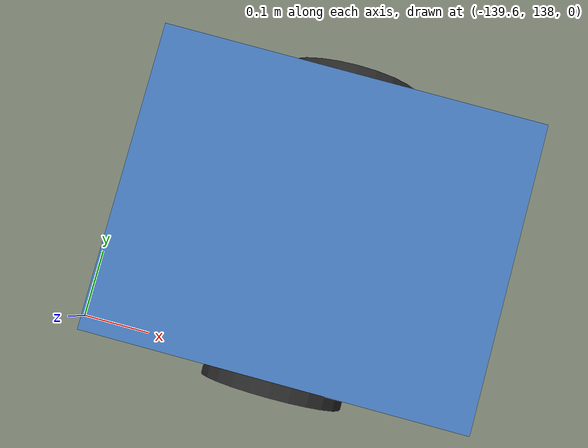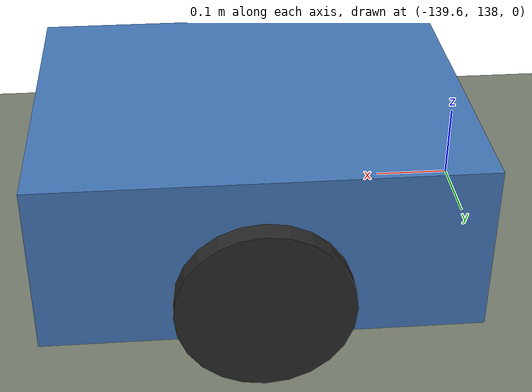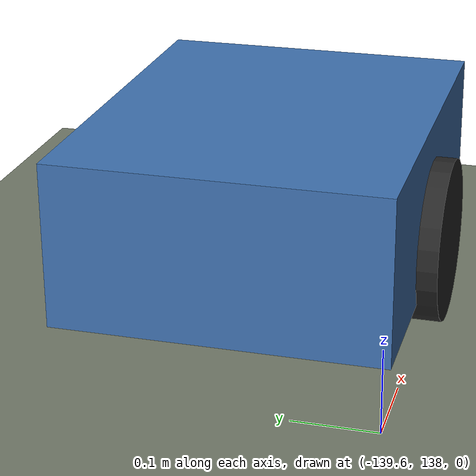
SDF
<?xml version="1.0" ?>
<sdf version="1.8">
  <world name="chicago_west_loop">

    <physics name="1ms" type="ignored">
      <max_step_size>0.001</max_step_size>
      <real_time_factor>1.0</real_time_factor>
    </physics>

    <plugin filename="ignition-gazebo-physics-system"
            name="ignition::gazebo::systems::Physics"/>
    <plugin filename="ignition-gazebo-scene-broadcaster-system"
            name="ignition::gazebo::systems::SceneBroadcaster"/>
    <plugin filename="ignition-gazebo-user-commands-system"
            name="ignition::gazebo::systems::UserCommands"/>
    <!-- gpu_lidar produces nothing at all without this plugin. -->
    <plugin filename="ignition-gazebo-sensors-system"
            name="ignition::gazebo::systems::Sensors">
      <render_engine>ogre2</render_engine>
    </plugin>

    <!-- Documentary: lets a reader check the georeferencing claim against
         the OSM source. Nothing in the stack depends on it. -->
    <spherical_coordinates>
      <surface_model>EARTH_WGS84</surface_model>
      <world_frame_orientation>ENU</world_frame_orientation>
      <latitude_deg>41.879</latitude_deg>
      <longitude_deg>-87.666</longitude_deg>
      <elevation>182.0</elevation>
      <heading_deg>0</heading_deg>
    </spherical_coordinates>

    <scene>
      <ambient>0.35 0.35 0.38 1</ambient>
      <background>0.62 0.72 0.85 1</background>
      <shadows>false</shadows>
    </scene>

    <light type="directional" name="sun">
      <cast_shadows>false</cast_shadows>
      <pose>0 0 50 0 0 0</pose>
      <diffuse>0.95 0.93 0.88 1</diffuse>
      <specular>0.15 0.15 0.15 1</specular>
      <direction>-0.6 0.45 -0.65</direction>
    </light>

    <!-- A dim fill from the opposite side so shaded walls stay legible
         rather than going to flat black. Cheap: no shadows, no extra
         geometry pass. -->
    <light type="directional" name="fill">
      <cast_shadows>false</cast_shadows>
      <pose>0 0 50 0 0 0</pose>
      <diffuse>0.25 0.27 0.32 1</diffuse>
      <specular>0 0 0 1</specular>
      <direction>0.6 -0.45 -0.5</direction>
    </light>

    <model name="ground_plane">
      <static>true</static>
      <link name="link">
        <collision name="collision">
          <geometry><plane><normal>0 0 1</normal>
            <size>800 800</size></plane></geometry>
        </collision>
        <visual name="visual">
          <geometry><plane><normal>0 0 1</normal>
            <size>800 800</size></plane></geometry>
          <material>
            <ambient>0.35 0.37 0.33 1</ambient>
            <diffuse>0.45 0.48 0.42 1</diffuse>
          </material>
        </visual>
      </link>
    </model>

    <include>
      <uri>model://site_buildings</uri>
    </include>

    <include>
      <uri>model://roboto_bot</uri>
      <name>roboto_bot</name>
      <pose>-139.3 138.2 0 0 0 0.000000</pose>
    </include>

  </world>
</sdf>

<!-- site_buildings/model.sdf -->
<sdf version="1.8">
  <model name="site_buildings">
    <static>true</static>
    <link name="link">
      <visual name="visual">
        <geometry><mesh><uri>meshes/buildings.obj</uri></mesh></geometry>
        <material>
          <ambient>0.62 0.60 0.56 1</ambient>
          <diffuse>0.72 0.70 0.66 1</diffuse>
          <specular>0.10 0.10 0.10 1</specular>
        </material>
      </visual>
      <collision name="c0">
        <pose>-95.993 -40.161 4.500 0 0 1.595780</pose>
        <geometry><box><size>35.433 41.251 9.000</size></box></geometry>
      </collision>
      <collision name="c1">
        <pose>154.458 191.765 3.923 0 0 0.017434</pose>
        <geometry><box><size>24.241 7.778 7.846</size></box></geometry>
      </collision>
      <collision name="c2">
        <pose>-116.423 81.113 9.000 0 0 0.016001</pose>
        <geometry><box><size>77.079 75.287 18.000</size></box></geometry>
      </collision>
      <collision name="c3">
        <pose>-23.208 114.087 9.000 0 0 1.590538</pose>
        <geometry><box><size>13.031 41.702 18.000</size></box></geometry>
      </collision>
      <collision name="c4">
        <pose>-22.935 100.602 4.987 0 0 1.591002</pose>
        <geometry><box><size>13.964 41.711 9.973</size></box></geometry>
      </collision>
      <collision name="c5">
        <pose>-90.187 21.554 5.221 0 0 1.583752</pose>
        <geometry><box><size>44.804 26.133 10.442</size></box></geometry>
      </collision>
      <collision name="c6">
        <pose>-105.908 210.686 1.500 0 0 -1.568632</pose>
        <geometry><box><size>25.302 35.667 3.000</size></box></geometry>
      </collision>
      <collision name="c7">
        <pose>155.203 18.773 5.742 0 0 1.589687</pose>
        <geometry><box><size>26.396 14.155 11.484</size></box></geometry>
      </collision>
      <collision name="c8">
        <pose>147.671 161.773 2.568 0 0 -3.130570</pose>
        <geometry><box><size>8.077 21.232 5.137</size></box></geometry>
      </collision>
      <collision name="c9">
        <pose>125.978 -123.258 3.075 0 0 1.591822</pose>
        <geometry><box><size>20.153 4.914 6.150</size></box></geometry>
      </collision>
      <collision name="c10">
        <pose>87.730 172.146 12.000 0 0 1.589832</pose>
        <geometry><box><size>56.712 70.237 24.000</size></box></geometry>
      </collision>
      <collision name="c11">
        <pose>119.354 -176.249 3.277 0 0 1.603447</pose>
        <geometry><box><size>22.767 9.030 6.554</size></box></geometry>
      </collision>
      <collision name="c12">
        <pose>120.857 -123.393 3.863 0 0 -1.549771</pose>
        <geometry><box><size>20.230 5.332 7.726</size></box></geometry>
      </collision>
      <collision name="c13">
        <pose>115.735 -123.604 3.364 0 0 1.589948</pose>
        <geometry><box><size>20.051 5.115 6.728</size></box></geometry>
      </collision>
      <collision name="c14">
        <pose>110.911 -174.716 5.281 0 0 1.590709</pose>
        <geometry><box><size>18.985 7.884 10.563</size></box></geometry>
      </collision>
      <collision name="c15">
        <pose>109.064 -121.258 4.272 0 0 -1.557830</pose>
        <geometry><box><size>24.567 6.708 8.544</size></box></geometry>
      </collision>
      <collision name="c16">
        <pose>101.253 -123.624 2.846 0 0 -1.551900</pose>
        <geometry><box><size>20.879 7.018 5.692</size></box></geometry>
      </collision>
      <collision name="c17">
        <pose>108.113 -36.397 4.358 0 0 0.015634</pose>
        <geometry><box><size>8.586 25.189 8.717</size></box></geometry>
      </collision>
      <collision name="c18">
        <pose>103.163 -172.330 2.442 0 0 -1.553798</pose>
        <geometry><box><size>15.861 7.474 4.884</size></box></geometry>
      </collision>
      <collision name="c19">
        <pose>94.596 -123.822 2.432 0 0 -1.562161</pose>
        <geometry><box><size>18.339 6.553 4.864</size></box></geometry>
      </collision>
      <collision name="c20">
        <pose>96.841 -34.992 4.500 0 0 -1.567279</pose>
        <geometry><box><size>23.692 6.400 9.000</size></box></geometry>
      </collision>
      <collision name="c21">
        <pose>95.884 -171.303 5.150 0 0 -3.126317</pose>
        <geometry><box><size>6.550 14.787 10.299</size></box></geometry>
      </collision>
      <collision name="c22">
        <pose>86.961 -123.375 4.269 0 0 -3.109525</pose>
        <geometry><box><size>7.624 20.140 8.538</size></box></geometry>
      </collision>
      <collision name="c23">
        <pose>86.120 -33.631 3.227 0 0 1.592123</pose>
        <geometry><box><size>21.031 8.933 6.453</size></box></geometry>
      </collision>
      <collision name="c24">
        <pose>88.109 -179.579 4.500 0 0 -1.554775</pose>
        <geometry><box><size>31.135 7.816 9.000</size></box></geometry>
      </collision>
      <collision name="c25">
        <pose>79.577 -89.446 4.682 0 0 -1.536759</pose>
        <geometry><box><size>10.980 5.280 9.363</size></box></geometry>
      </collision>
      <collision name="c26">
        <pose>80.505 -120.393 4.297 0 0 1.596537</pose>
        <geometry><box><size>24.538 5.537 8.594</size></box></geometry>
      </collision>
      <collision name="c27">
        <pose>80.429 -171.025 3.837 0 0 1.575457</pose>
        <geometry><box><size>14.257 6.559 7.673</size></box></geometry>
      </collision>
      <collision name="c28">
        <pose>74.625 -89.594 4.500 0 0 1.605286</pose>
        <geometry><box><size>10.886 4.942 9.000</size></box></geometry>
      </collision>
      <collision name="c29">
        <pose>74.209 -122.140 4.110 0 0 -1.547193</pose>
        <geometry><box><size>21.576 7.188 8.221</size></box></geometry>
      </collision>
      <collision name="c30">
        <pose>77.928 -36.520 5.066 0 0 1.583336</pose>
        <geometry><box><size>22.643 5.727 10.132</size></box></geometry>
      </collision>
      <collision name="c31">
        <pose>71.159 -35.065 5.000 0 0 1.568438</pose>
        <geometry><box><size>17.609 6.491 10.000</size></box></geometry>
      </collision>
      <collision name="c32">
        <pose>73.173 -177.534 4.500 0 0 1.582913</pose>
        <geometry><box><size>25.213 7.387 9.000</size></box></geometry>
      </collision>
      <collision name="c33">
        <pose>65.628 -124.385 5.662 0 0 1.593675</pose>
        <geometry><box><size>21.239 9.861 11.325</size></box></geometry>
      </collision>
      <collision name="c34">
        <pose>64.296 -86.552 3.610 0 0 0.021226</pose>
        <geometry><box><size>9.424 7.189 7.220</size></box></geometry>
      </collision>
      <collision name="c35">
        <pose>64.012 -35.143 4.143 0 0 1.571750</pose>
        <geometry><box><size>17.608 7.861 8.286</size></box></geometry>
      </collision>
      <collision name="c36">
        <pose>66.404 -174.338 2.673 0 0 -3.121909</pose>
        <geometry><box><size>5.646 15.572 5.346</size></box></geometry>
      </collision>
      <collision name="c37">
        <pose>56.314 -88.367 4.908 0 0 1.592108</pose>
        <geometry><box><size>10.521 6.868 9.817</size></box></geometry>
      </collision>
      <collision name="c38">
        <pose>60.614 -174.448 4.431 0 0 1.584653</pose>
        <geometry><box><size>15.599 6.160 8.861</size></box></geometry>
      </collision>
      <collision name="c39">
        <pose>48.709 -121.663 4.329 0 0 1.581750</pose>
        <geometry><box><size>24.820 8.356 8.658</size></box></geometry>
      </collision>
      <collision name="c40">
        <pose>48.201 159.013 4.500 0 0 -1.543943</pose>
        <geometry><box><size>23.592 5.799 9.000</size></box></geometry>
      </collision>
      <collision name="c41">
        <pose>56.180 -35.215 2.890 0 0 -1.569842</pose>
        <geometry><box><size>17.642 7.803 5.781</size></box></geometry>
      </collision>
      <collision name="c42">
        <pose>42.247 -123.761 3.136 0 0 1.595522</pose>
        <geometry><box><size>20.828 4.642 6.272</size></box></geometry>
      </collision>
      <collision name="c43">
        <pose>36.415 173.712 2.971 0 0 -1.541293</pose>
        <geometry><box><size>52.729 15.079 5.942</size></box></geometry>
      </collision>
      <collision name="c44">
        <pose>53.122 -177.850 4.279 0 0 1.580973</pose>
        <geometry><box><size>22.200 8.965 8.557</size></box></geometry>
      </collision>
      <collision name="c45">
        <pose>37.491 -123.877 4.191 0 0 -1.546070</pose>
        <geometry><box><size>20.830 4.874 8.381</size></box></geometry>
      </collision>
      <collision name="c46">
        <pose>42.895 19.914 7.500 0 0 -1.551113</pose>
        <geometry><box><size>37.971 29.446 15.000</size></box></geometry>
      </collision>
      <collision name="c47">
        <pose>42.497 -35.450 4.500 0 0 -1.422884</pose>
        <geometry><box><size>23.935 12.539 9.000</size></box></geometry>
      </collision>
      <collision name="c48">
        <pose>43.775 -176.113 4.500 0 0 1.588043</pose>
        <geometry><box><size>18.296 9.821 9.000</size></box></geometry>
      </collision>
      <collision name="c49">
        <pose>32.505 -123.993 5.376 0 0 0.021688</pose>
        <geometry><box><size>5.215 20.831 10.751</size></box></geometry>
      </collision>
      <collision name="c50">
        <pose>25.515 158.394 3.472 0 0 1.604364</pose>
        <geometry><box><size>18.496 6.508 6.945</size></box></geometry>
      </collision>
      <collision name="c51">
        <pose>34.892 -173.248 4.513 0 0 1.594256</pose>
        <geometry><box><size>15.521 7.299 9.026</size></box></geometry>
      </collision>
      <collision name="c52">
        <pose>22.852 48.787 3.330 0 0 -1.552376</pose>
        <geometry><box><size>18.030 7.372 6.660</size></box></geometry>
      </collision>
      <collision name="c53">
        <pose>26.064 -125.932 4.500 0 0 -1.549033</pose>
        <geometry><box><size>17.253 7.746 9.000</size></box></geometry>
      </collision>
      <collision name="c54">
        <pose>28.178 -173.121 3.724 0 0 1.593001</pose>
        <geometry><box><size>13.144 5.030 7.447</size></box></geometry>
      </collision>
      <collision name="c55">
        <pose>19.153 157.278 4.500 0 0 -1.543805</pose>
        <geometry><box><size>18.926 5.480 9.000</size></box></geometry>
      </collision>
      <collision name="c56">
        <pose>25.002 -35.589 4.500 0 0 1.595000</pose>
        <geometry><box><size>20.864 6.774 9.000</size></box></geometry>
      </collision>
      <collision name="c57">
        <pose>23.384 -178.235 4.145 0 0 1.595765</pose>
        <geometry><box><size>23.280 5.032 8.291</size></box></geometry>
      </collision>
      <collision name="c58">
        <pose>15.369 29.136 4.500 0 0 -1.555476</pose>
        <geometry><box><size>57.994 8.019 9.000</size></box></geometry>
      </collision>
      <collision name="c59">
        <pose>13.264 157.273 4.500 0 0 -1.542528</pose>
        <geometry><box><size>18.726 6.309 9.000</size></box></geometry>
      </collision>
      <collision name="c60">
        <pose>16.402 -33.200 4.500 0 0 -1.543567</pose>
        <geometry><box><size>16.860 7.550 9.000</size></box></geometry>
      </collision>
      <collision name="c61">
        <pose>18.488 -177.840 4.658 0 0 0.012144</pose>
        <geometry><box><size>4.824 22.304 9.317</size></box></geometry>
      </collision>
      <collision name="c62">
        <pose>7.591 41.439 4.557 0 0 1.587365</pose>
        <geometry><box><size>29.560 7.189 9.115</size></box></geometry>
      </collision>
      <collision name="c63">
        <pose>14.162 -126.733 3.739 0 0 0.026267</pose>
        <geometry><box><size>6.344 15.257 7.479</size></box></geometry>
      </collision>
      <collision name="c64">
        <pose>11.966 -87.824 3.168 0 0 0.018539</pose>
        <geometry><box><size>17.407 7.009 6.337</size></box></geometry>
      </collision>
      <collision name="c65">
        <pose>7.283 156.348 4.500 0 0 1.594942</pose>
        <geometry><box><size>20.249 5.846 9.000</size></box></geometry>
      </collision>
      <collision name="c66">
        <pose>12.073 -171.387 2.881 0 0 -3.127013</pose>
        <geometry><box><size>7.179 16.975 5.763</size></box></geometry>
      </collision>
      <collision name="c67">
        <pose>8.082 -126.880 5.190 0 0 -3.119417</pose>
        <geometry><box><size>6.011 15.257 10.381</size></box></geometry>
      </collision>
      <collision name="c68">
        <pose>1.785 -127.043 5.677 0 0 -1.550614</pose>
        <geometry><box><size>15.242 6.618 11.355</size></box></geometry>
      </collision>
      <collision name="c69">
        <pose>0.585 -173.764 3.180 0 0 0.018129</pose>
        <geometry><box><size>6.127 15.095 6.360</size></box></geometry>
      </collision>
      <collision name="c70">
        <pose>-4.860 -127.210 3.974 0 0 1.590976</pose>
        <geometry><box><size>15.239 6.742 7.948</size></box></geometry>
      </collision>
      <collision name="c71">
        <pose>-6.030 -173.898 2.537 0 0 0.014182</pose>
        <geometry><box><size>7.165 15.151 5.073</size></box></geometry>
      </collision>
      <collision name="c72">
        <pose>-11.767 -127.382 3.776 0 0 -1.550616</pose>
        <geometry><box><size>15.266 7.075 7.551</size></box></geometry>
      </collision>
      <collision name="c73">
        <pose>-13.128 -174.010 5.633 0 0 0.016993</pose>
        <geometry><box><size>7.190 15.155 11.265</size></box></geometry>
      </collision>
      <collision name="c74">
        <pose>-18.640 -127.543 4.094 0 0 1.584955</pose>
        <geometry><box><size>15.299 6.833 8.189</size></box></geometry>
      </collision>
      <collision name="c75">
        <pose>-20.116 -174.120 2.752 0 0 -3.122663</pose>
        <geometry><box><size>7.040 15.186 5.503</size></box></geometry>
      </collision>
      <collision name="c76">
        <pose>-25.515 -127.705 5.422 0 0 0.022083</pose>
        <geometry><box><size>7.041 15.256 10.845</size></box></geometry>
      </collision>
      <collision name="c77">
        <pose>-27.107 -174.237 4.229 0 0 1.588805</pose>
        <geometry><box><size>15.211 6.957 8.458</size></box></geometry>
      </collision>
      <collision name="c78">
        <pose>-33.557 -174.340 5.099 0 0 -1.552787</pose>
        <geometry><box><size>15.240 5.945 10.198</size></box></geometry>
      </collision>
      <collision name="c79">
        <pose>-31.948 -127.847 4.966 0 0 -3.119635</pose>
        <geometry><box><size>6.069 15.256 9.933</size></box></geometry>
      </collision>
      <collision name="c80">
        <pose>-107.202 -133.079 3.332 0 0 -1.547062</pose>
        <geometry><box><size>14.345 5.679 6.664</size></box></geometry>
      </collision>
      <collision name="c81">
        <pose>-148.426 -116.511 6.000 0 0 -1.547400</pose>
        <geometry><box><size>55.666 15.282 12.000</size></box></geometry>
      </collision>
      <collision name="c82">
        <pose>-150.944 -190.137 10.500 0 0 -1.550809</pose>
        <geometry><box><size>32.784 51.300 21.000</size></box></geometry>
      </collision>
      <collision name="c83">
        <pose>-161.633 8.353 4.500 0 0 -1.547726</pose>
        <geometry><box><size>16.469 6.456 9.000</size></box></geometry>
      </collision>
      <collision name="c84">
        <pose>-170.317 8.091 5.151 0 0 1.604222</pose>
        <geometry><box><size>23.681 7.126 10.303</size></box></geometry>
      </collision>
      <collision name="c85">
        <pose>-178.158 11.498 3.240 0 0 1.594654</pose>
        <geometry><box><size>20.770 7.337 6.481</size></box></geometry>
      </collision>
      <collision name="c86">
        <pose>-190.547 202.001 30.000 0 0 1.597255</pose>
        <geometry><box><size>45.694 71.976 60.000</size></box></geometry>
      </collision>
      <collision name="c87">
        <pose>-208.517 18.875 5.373 0 0 -3.135129</pose>
        <geometry><box><size>51.316 44.253 10.745</size></box></geometry>
      </collision>
      <collision name="c88">
        <pose>-204.073 -194.819 5.050 0 0 0.017657</pose>
        <geometry><box><size>55.566 36.693 10.100</size></box></geometry>
      </collision>
      <collision name="c89">
        <pose>-213.781 -120.214 2.453 0 0 0.022256</pose>
        <geometry><box><size>83.742 50.717 4.906</size></box></geometry>
      </collision>
      <collision name="c90">
        <pose>-183.677 113.700 3.953 0 0 2.425040</pose>
        <geometry><box><size>29.715 31.592 7.907</size></box></geometry>
      </collision>
      <collision name="c91">
        <pose>-164.528 69.058 4.547 0 0 -3.137696</pose>
        <geometry><box><size>39.669 32.084 9.094</size></box></geometry>
      </collision>
      <collision name="c92">
        <pose>-199.691 95.543 6.000 0 0 -2.289324</pose>
        <geometry><box><size>14.489 30.363 12.000</size></box></geometry>
      </collision>
      <collision name="c93">
        <pose>117.152 -31.272 3.492 0 0 1.621568</pose>
        <geometry><box><size>19.227 10.208 6.984</size></box></geometry>
      </collision>
      <collision name="c94">
        <pose>-20.473 -65.952 4.519 0 0 0.022542</pose>
        <geometry><box><size>40.435 29.172 9.039</size></box></geometry>
      </collision>
      <collision name="c95">
        <pose>113.086 -58.733 4.599 0 0 0.034630</pose>
        <geometry><box><size>21.505 7.168 9.198</size></box></geometry>
      </collision>
      <collision name="c96">
        <pose>113.567 -71.746 3.059 0 0 -3.126624</pose>
        <geometry><box><size>20.057 6.241 6.118</size></box></geometry>
      </collision>
      <collision name="c97">
        <pose>112.457 -78.875 4.500 0 0 0.041123</pose>
        <geometry><box><size>24.865 5.700 9.000</size></box></geometry>
      </collision>
      <collision name="c98">
        <pose>114.473 -86.073 3.975 0 0 0.037535</pose>
        <geometry><box><size>20.143 6.658 7.949</size></box></geometry>
      </collision>
      <collision name="c99">
        <pose>113.201 -93.007 3.152 0 0 1.604112</pose>
        <geometry><box><size>7.479 23.193 6.304</size></box></geometry>
      </collision>
      <collision name="c100">
        <pose>120.698 -103.757 5.742 0 0 0.025680</pose>
        <geometry><box><size>13.419 6.713 11.484</size></box></geometry>
      </collision>
      <collision name="c101">
        <pose>-81.256 -118.466 1.500 0 0 1.600045</pose>
        <geometry><box><size>12.768 14.927 3.000</size></box></geometry>
      </collision>
      <collision name="c102">
        <pose>-87.372 -131.296 4.500 0 0 1.588242</pose>
        <geometry><box><size>12.044 27.711 9.000</size></box></geometry>
      </collision>
      <collision name="c103">
        <pose>-91.766 -140.210 4.500 0 0 -1.544333</pose>
        <geometry><box><size>5.803 13.066 9.000</size></box></geometry>
      </collision>
      <collision name="c104">
        <pose>122.356 -195.881 4.551 0 0 0.034094</pose>
        <geometry><box><size>14.483 8.820 9.102</size></box></geometry>
      </collision>
      <collision name="c105">
        <pose>-92.680 154.249 5.472 0 0 -1.554301</pose>
        <geometry><box><size>30.381 27.615 10.943</size></box></geometry>
      </collision>
      <collision name="c106">
        <pose>-23.470 148.691 6.000 0 0 -3.110118</pose>
        <geometry><box><size>42.767 14.037 12.000</size></box></geometry>
      </collision>
      <collision name="c107">
        <pose>97.153 228.220 15.000 0 0 -1.557276</pose>
        <geometry><box><size>74.380 49.128 30.000</size></box></geometry>
      </collision>
      <collision name="c108">
        <pose>44.679 93.960 6.000 0 0 -3.121748</pose>
        <geometry><box><size>83.293 57.420 12.000</size></box></geometry>
      </collision>
      <collision name="c109">
        <pose>0.814 -196.544 2.764 0 0 -3.096559</pose>
        <geometry><box><size>6.415 6.596 5.528</size></box></geometry>
      </collision>
      <collision name="c110">
        <pose>24.803 -70.358 2.954 0 0 -1.551403</pose>
        <geometry><box><size>11.149 7.672 5.908</size></box></geometry>
      </collision>
      <collision name="c111">
        <pose>-19.089 -105.106 3.979 0 0 0.027397</pose>
        <geometry><box><size>6.892 6.856 7.958</size></box></geometry>
      </collision>
      <collision name="c112">
        <pose>48.153 -89.095 3.929 0 0 -1.545823</pose>
        <geometry><box><size>9.393 7.322 7.857</size></box></geometry>
      </collision>
      <collision name="c113">
        <pose>-5.431 -104.755 2.361 0 0 -3.114456</pose>
        <geometry><box><size>6.959 6.869 4.722</size></box></geometry>
      </collision>
      <collision name="c114">
        <pose>-33.096 -105.484 5.056 0 0 -3.114999</pose>
        <geometry><box><size>7.158 6.854 10.112</size></box></geometry>
      </collision>
      <collision name="c115">
        <pose>-26.696 -197.645 3.337 0 0 0.039377</pose>
        <geometry><box><size>7.093 6.712 6.674</size></box></geometry>
      </collision>
      <collision name="c116">
        <pose>24.453 194.941 2.459 0 0 -1.534472</pose>
        <geometry><box><size>6.869 6.712 4.918</size></box></geometry>
      </collision>
      <collision name="c117">
        <pose>-33.133 -197.901 5.706 0 0 1.607895</pose>
        <geometry><box><size>6.729 5.857 11.411</size></box></geometry>
      </collision>
      <collision name="c118">
        <pose>107.463 -105.481 4.784 0 0 1.562847</pose>
        <geometry><box><size>6.253 3.653 9.568</size></box></geometry>
      </collision>
      <collision name="c119">
        <pose>95.432 -72.277 2.296 0 0 -3.126922</pose>
        <geometry><box><size>10.610 6.080 4.592</size></box></geometry>
      </collision>
      <collision name="c120">
        <pose>-19.686 -197.384 5.572 0 0 0.034534</pose>
        <geometry><box><size>7.184 6.709 11.144</size></box></geometry>
      </collision>
      <collision name="c121">
        <pose>78.786 -69.282 4.582 0 0 1.547567</pose>
        <geometry><box><size>11.788 6.823 9.164</size></box></geometry>
      </collision>
      <collision name="c122">
        <pose>-170.849 41.559 2.728 0 0 -3.127349</pose>
        <geometry><box><size>7.076 7.798 5.455</size></box></geometry>
      </collision>
      <collision name="c123">
        <pose>-12.289 -104.929 4.256 0 0 -1.552660</pose>
        <geometry><box><size>6.897 6.825 8.511</size></box></geometry>
      </collision>
      <collision name="c124">
        <pose>25.143 -88.990 5.469 0 0 -1.558560</pose>
        <geometry><box><size>7.621 7.166 10.938</size></box></geometry>
      </collision>
      <collision name="c125">
        <pose>88.646 -202.565 5.524 0 0 -1.555936</pose>
        <geometry><box><size>6.710 6.708 11.048</size></box></geometry>
      </collision>
      <collision name="c126">
        <pose>55.820 -72.156 4.128 0 0 -0.006495</pose>
        <geometry><box><size>6.832 7.341 8.255</size></box></geometry>
      </collision>
      <collision name="c127">
        <pose>70.980 -71.790 5.483 0 0 0.004603</pose>
        <geometry><box><size>7.439 7.021 10.967</size></box></geometry>
      </collision>
      <collision name="c128">
        <pose>94.103 -105.450 3.533 0 0 -3.127329</pose>
        <geometry><box><size>7.015 9.297 7.066</size></box></geometry>
      </collision>
      <collision name="c129">
        <pose>101.491 -103.741 4.064 0 0 1.611388</pose>
        <geometry><box><size>5.525 5.683 8.129</size></box></geometry>
      </collision>
      <collision name="c130">
        <pose>146.554 179.742 2.326 0 0 0.016013</pose>
        <geometry><box><size>6.251 5.643 4.652</size></box></geometry>
      </collision>
      <collision name="c131">
        <pose>-12.750 -197.095 2.495 0 0 0.041000</pose>
        <geometry><box><size>7.434 6.654 4.990</size></box></geometry>
      </collision>
      <collision name="c132">
        <pose>17.386 -70.524 4.754 0 0 1.590954</pose>
        <geometry><box><size>11.150 7.373 9.509</size></box></geometry>
      </collision>
      <collision name="c133">
        <pose>63.477 -71.873 2.826 0 0 1.600417</pose>
        <geometry><box><size>7.289 6.827 5.651</size></box></geometry>
      </collision>
      <collision name="c134">
        <pose>-5.632 -196.823 3.500 0 0 0.034536</pose>
        <geometry><box><size>7.298 6.649 7.001</size></box></geometry>
      </collision>
      <collision name="c135">
        <pose>0.720 -104.591 5.260 0 0 0.026034</pose>
        <geometry><box><size>5.547 6.869 10.520</size></box></geometry>
      </collision>
      <collision name="c136">
        <pose>94.045 -86.324 3.689 0 0 -3.111365</pose>
        <geometry><box><size>8.179 6.553 7.378</size></box></geometry>
      </collision>
      <collision name="c137">
        <pose>-178.308 39.649 4.888 0 0 -1.545431</pose>
        <geometry><box><size>9.155 7.475 9.775</size></box></geometry>
      </collision>
      <collision name="c138">
        <pose>94.432 -93.338 2.537 0 0 0.013967</pose>
        <geometry><box><size>7.164 5.488 5.075</size></box></geometry>
      </collision>
      <collision name="c139">
        <pose>-26.053 -105.295 3.436 0 0 -3.114810</pose>
        <geometry><box><size>7.050 6.856 6.873</size></box></geometry>
      </collision>
      <collision name="c140">
        <pose>41.697 -72.231 4.741 0 0 -0.007037</pose>
        <geometry><box><size>12.684 7.529 9.483</size></box></geometry>
      </collision>
      <collision name="c141">
        <pose>-18.127 -45.639 5.165 0 0 1.584759</pose>
        <geometry><box><size>9.188 37.474 10.329</size></box></geometry>
      </collision>
      <collision name="c142">
        <pose>-20.403 -31.662 5.342 0 0 0.025086</pose>
        <geometry><box><size>41.182 19.291 10.685</size></box></geometry>
      </collision>
      <collision name="c143">
        <pose>192.451 -83.278 4.500 0 0 0.025897</pose>
        <geometry><box><size>81.585 81.576 9.000</size></box></geometry>
      </collision>
      <collision name="c144">
        <pose>-26.900 180.407 6.000 0 0 -3.123735</pose>
        <geometry><box><size>41.901 48.949 12.000</size></box></geometry>
      </collision>
      <collision name="c145">
        <pose>74.619 44.479 3.351 0 0 -1.548273</pose>
        <geometry><box><size>30.609 22.650 6.702</size></box></geometry>
      </collision>
      <collision name="c146">
        <pose>47.151 192.536 2.587 0 0 -3.120681</pose>
        <geometry><box><size>6.909 6.666 5.174</size></box></geometry>
      </collision>
      <collision name="c147">
        <pose>107.233 31.984 6.000 0 0 1.589024</pose>
        <geometry><box><size>57.563 37.017 12.000</size></box></geometry>
      </collision>
      <collision name="c148">
        <pose>-133.364 22.211 5.185 0 0 1.591488</pose>
        <geometry><box><size>47.709 36.016 10.369</size></box></geometry>
      </collision>
      <collision name="c149">
        <pose>-23.833 46.311 6.000 0 0 1.588554</pose>
        <geometry><box><size>92.534 45.508 12.000</size></box></geometry>
      </collision>
      <collision name="c150">
        <pose>106.006 95.436 6.000 0 0 0.017935</pose>
        <geometry><box><size>34.710 56.850 12.000</size></box></geometry>
      </collision>
      <collision name="c151">
        <pose>87.022 -58.198 5.054 0 0 1.603048</pose>
        <geometry><box><size>7.531 9.568 10.108</size></box></geometry>
      </collision>
      <collision name="c152">
        <pose>-203.119 -170.823 2.662 0 0 -3.124226</pose>
        <geometry><box><size>21.710 11.289 5.324</size></box></geometry>
      </collision>
      <collision name="c153">
        <pose>-104.578 -94.914 7.500 0 0 -1.548564</pose>
        <geometry><box><size>34.340 60.057 15.000</size></box></geometry>
      </collision>
    </link>
  </model>
</sdf>

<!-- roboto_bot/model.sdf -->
<sdf version="1.8">
  <model name="roboto_bot">

    <link name="base_link">
      <pose>0 0 0.15 0 0 0</pose>
      <inertial>
        <pose>0.07 0 0 0 0 0</pose>
        <mass>15.0</mass>
        <!-- Solid box 0.5 x 0.4 x 0.2: I = m/12 * (a^2 + b^2) -->
        <inertia>
          <ixx>0.2500</ixx><ixy>0</ixy><ixz>0</ixz>
          <iyy>0.3625</iyy><iyz>0</iyz>
          <izz>0.5125</izz>
        </inertia>
      </inertial>
      <collision name="collision">
        <geometry><box><size>0.5 0.4 0.2</size></box></geometry>
      </collision>
      <visual name="visual">
        <geometry><box><size>0.5 0.4 0.2</size></box></geometry>
        <material>
          <ambient>0.20 0.35 0.55 1</ambient>
          <diffuse>0.25 0.45 0.70 1</diffuse>
        </material>
      </visual>

      <sensor name="gpu_lidar" type="gpu_lidar">
        <!-- Clear of the chassis: a sensor inside its own collision box
             returns range_min on every beam. -->
        <pose>0.15 0 0.15 0 0 0</pose>
        <topic>scan</topic>
        <update_rate>10</update_rate>
        <always_on>true</always_on>
        <visualize>true</visualize>
        <lidar>
          <scan>
            <horizontal>
              <samples>180</samples>
              <resolution>1</resolution>
              <min_angle>-2.356194490</min_angle>  <!-- -135 deg -->
              <max_angle>2.356194490</max_angle>   <!-- +135 deg, 270 FOV -->
            </horizontal>
            <vertical>
              <samples>1</samples>
              <min_angle>0</min_angle>
              <max_angle>0</max_angle>
            </vertical>
          </scan>
          <range>
            <min>0.15</min>
            <max>30.0</max>
            <resolution>0.01</resolution>
          </range>
          <noise>
            <type>gaussian</type>
            <mean>0.0</mean>
            <stddev>0.02</stddev>
          </noise>
        </lidar>
      </sensor>
    </link>

    <link name="wheel_left">
      <pose>0 0.2 0.10 0 0 0</pose>
      <inertial>
        <mass>1.0</mass>
        <!-- Cylinder r=0.10 h=0.05, spin axis = y.
             about axis: m r^2 / 2 ; about diameter: m/12 (3r^2 + h^2) -->
        <inertia>
          <ixx>0.002708</ixx><ixy>0</ixy><ixz>0</ixz>
          <iyy>0.005000</iyy><iyz>0</iyz>
          <izz>0.002708</izz>
        </inertia>
      </inertial>
      <collision name="collision">
        <pose>0 0 0 1.5707963 0 0</pose>
        <geometry><cylinder><radius>0.10</radius><length>0.05</length></cylinder></geometry>
        <surface>
          <friction><ode><mu>1.0</mu><mu2>1.0</mu2></ode></friction>
        </surface>
      </collision>
      <visual name="visual">
        <pose>0 0 0 1.5707963 0 0</pose>
        <geometry><cylinder><radius>0.10</radius><length>0.05</length></cylinder></geometry>
        <material>
          <ambient>0.08 0.08 0.08 1</ambient>
          <diffuse>0.15 0.15 0.15 1</diffuse>
        </material>
      </visual>
    </link>

    <link name="wheel_right">
      <pose>0 -0.2 0.10 0 0 0</pose>
      <inertial>
        <mass>1.0</mass>
        <inertia>
          <ixx>0.002708</ixx><ixy>0</ixy><ixz>0</ixz>
          <iyy>0.005000</iyy><iyz>0</iyz>
          <izz>0.002708</izz>
        </inertia>
      </inertial>
      <collision name="collision">
        <pose>0 0 0 1.5707963 0 0</pose>
        <geometry><cylinder><radius>0.10</radius><length>0.05</length></cylinder></geometry>
        <surface>
          <friction><ode><mu>1.0</mu><mu2>1.0</mu2></ode></friction>
        </surface>
      </collision>
      <visual name="visual">
        <pose>0 0 0 1.5707963 0 0</pose>
        <geometry><cylinder><radius>0.10</radius><length>0.05</length></cylinder></geometry>
        <material>
          <ambient>0.08 0.08 0.08 1</ambient>
          <diffuse>0.15 0.15 0.15 1</diffuse>
        </material>
      </visual>
    </link>

    <link name="caster">
      <pose>0.18 0 0.05 0 0 0</pose>
      <inertial>
        <mass>0.5</mass>
        <inertia>
          <ixx>0.0005</ixx><ixy>0</ixy><ixz>0</ixz>
          <iyy>0.0005</iyy><iyz>0</iyz>
          <izz>0.0005</izz>
        </inertia>
      </inertial>
      <collision name="collision">
        <geometry><sphere><radius>0.05</radius></sphere></geometry>
        <surface>
          <!-- Near-frictionless: a caster that grips fights the drive
               wheels and makes the robot veer under pure-forward commands. -->
          <friction><ode><mu>0.001</mu><mu2>0.001</mu2></ode></friction>
        </surface>
      </collision>
      <visual name="visual">
        <geometry><sphere><radius>0.05</radius></sphere></geometry>
        <material><ambient>0.3 0.3 0.3 1</ambient></material>
      </visual>
    </link>

    <joint name="joint_wheel_left" type="revolute">
      <parent>base_link</parent>
      <child>wheel_left</child>
      <axis>
        <xyz>0 1 0</xyz>
        <limit><lower>-1e16</lower><upper>1e16</upper></limit>
        <dynamics><damping>0.02</damping></dynamics>
      </axis>
    </joint>

    <joint name="joint_wheel_right" type="revolute">
      <parent>base_link</parent>
      <child>wheel_right</child>
      <axis>
        <xyz>0 1 0</xyz>
        <limit><lower>-1e16</lower><upper>1e16</upper></limit>
        <dynamics><damping>0.02</damping></dynamics>
      </axis>
    </joint>

    <joint name="joint_caster" type="ball">
      <parent>base_link</parent>
      <child>caster</child>
    </joint>

    <plugin filename="ignition-gazebo-diff-drive-system"
            name="ignition::gazebo::systems::DiffDrive">
      <left_joint>joint_wheel_left</left_joint>
      <right_joint>joint_wheel_right</right_joint>
      <!-- Must match OdomErrorModel.wheel_baseline_m in
           roboto_core/sim/odom_corruptor.py -->
      <wheel_separation>0.4</wheel_separation>
      <wheel_radius>0.10</wheel_radius>
      <max_linear_acceleration>1.0</max_linear_acceleration>
      <topic>cmd_vel</topic>
      <odom_topic>odom</odom_topic>
      <tf_topic>tf</tf_topic>
      <frame_id>odom</frame_id>
      <child_frame_id>base_link</child_frame_id>
      <odom_publish_frequency>50</odom_publish_frequency>
    </plugin>

    <plugin filename="ignition-gazebo-pose-publisher-system"
            name="ignition::gazebo::systems::PosePublisher">
      <publish_link_pose>false</publish_link_pose>
      <publish_model_pose>true</publish_model_pose>
      <publish_nested_model_pose>false</publish_nested_model_pose>
      <use_pose_vector_msg>true</use_pose_vector_msg>
      <update_frequency>50</update_frequency>
    </plugin>

    <plugin filename="ignition-gazebo-joint-state-publisher-system"
            name="ignition::gazebo::systems::JointStatePublisher">
      <joint_name>joint_wheel_left</joint_name>
      <joint_name>joint_wheel_right</joint_name>
    </plugin>

  </model>
</sdf>
